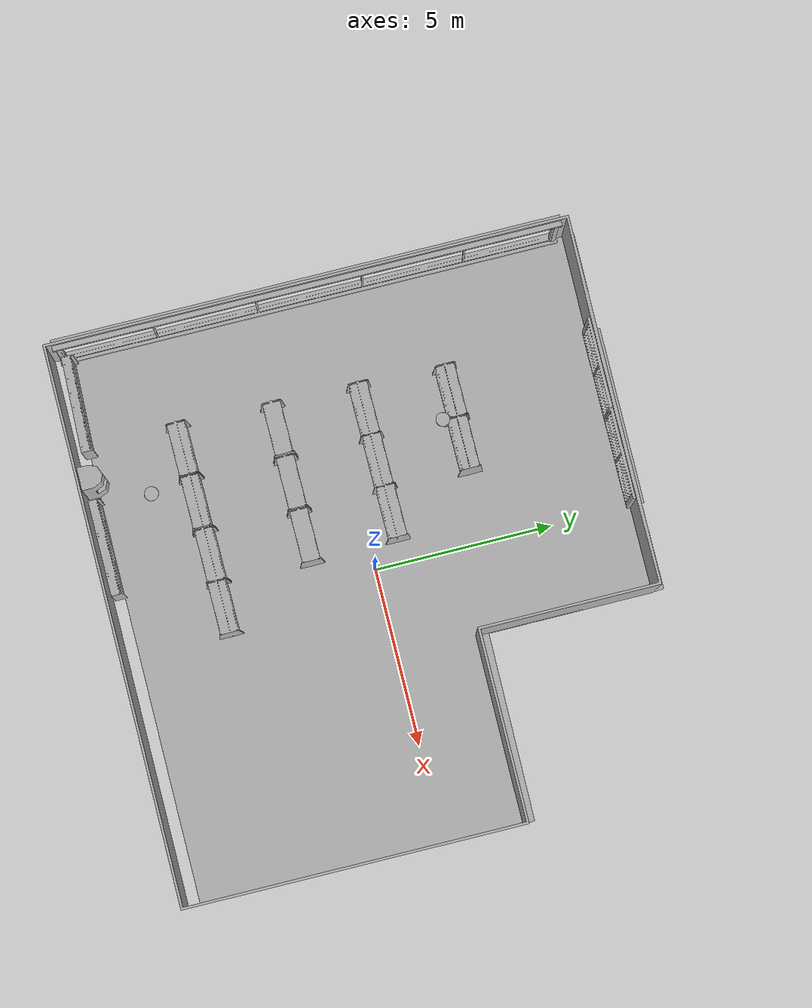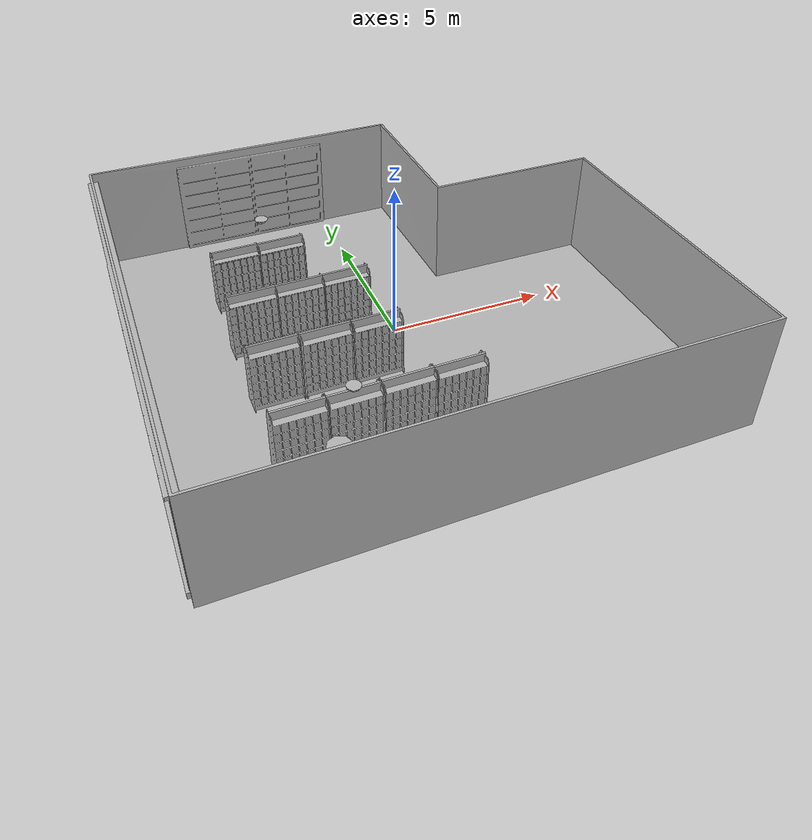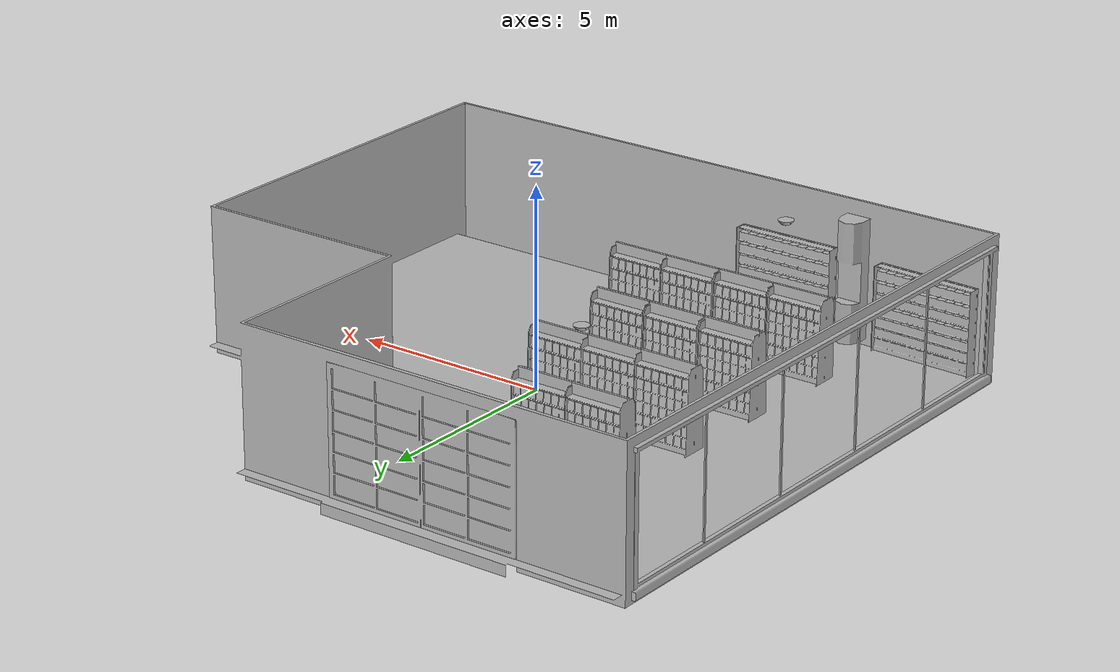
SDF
<sdf version="1.7">
 <world name="default">
  <model name="BookshelfB_01_001">
   <frame name="aws_robomaker_retail_BookshelfB_01::__model__" attached_to="aws_robomaker_retail_BookshelfB_01::link">
    <pose relative_to="__model__">0 0 0 0 -0 0</pose>
   </frame>
   <link name="aws_robomaker_retail_BookshelfB_01::link">
    <inertial>
     <mass>50</mass>
     <inertia><ixx>19.8742</ixx><ixy>0</ixy><ixz>0</ixz><iyy>49.1263</iyy><iyz>0</iyz><izz>30.2231</izz></inertia>
    </inertial>
    <collision name="collision">
     <geometry>
      <mesh>
       <uri>file://models/aws_robomaker_retail_BookshelfB_01/meshes/aws_BookshelfB_01_collision.DAE</uri>
       <scale>1 1 1</scale>
      </mesh>
     </geometry>
    </collision>
    <visual name="visual">
     <geometry>
      <mesh><uri>file://models/aws_robomaker_retail_BookshelfB_01/meshes/aws_BookshelfB_01_visual.DAE</uri></mesh>
     </geometry>
     <meta><layer>1</layer></meta>
    </visual>
    <pose relative_to="aws_robomaker_retail_BookshelfB_01::__model__">0 0 0 0 -0 0</pose>
   </link>
   <static>1</static>
   <pose>-6.18968 -6.78565 -0.008942 0.003533 0.000121 -0.032073</pose>
  </model>
  <model name="BookshelfB_01_002">
   <frame name="aws_robomaker_retail_BookshelfB_01::__model__" attached_to="aws_robomaker_retail_BookshelfB_01::link">
    <pose relative_to="__model__">0 0 0 0 -0 0</pose>
   </frame>
   <link name="aws_robomaker_retail_BookshelfB_01::link">
    <inertial>
     <mass>50</mass>
     <inertia><ixx>19.8742</ixx><ixy>0</ixy><ixz>0</ixz><iyy>49.1263</iyy><iyz>0</iyz><izz>30.2231</izz></inertia>
    </inertial>
    <collision name="collision">
     <geometry>
      <mesh>
       <uri>file://models/aws_robomaker_retail_BookshelfB_01/meshes/aws_BookshelfB_01_collision.DAE</uri>
       <scale>1 1 1</scale>
      </mesh>
     </geometry>
    </collision>
    <visual name="visual">
     <geometry>
      <mesh><uri>file://models/aws_robomaker_retail_BookshelfB_01/meshes/aws_BookshelfB_01_visual.DAE</uri></mesh>
     </geometry>
     <meta><layer>1</layer></meta>
    </visual>
    <pose relative_to="aws_robomaker_retail_BookshelfB_01::__model__">0 0 0 0 -0 0</pose>
   </link>
   <static>1</static>
   <pose>-2.20941 -6.97146 0.017074 -0.000128 -0.000252 0.000364</pose>
  </model>
  <model name="ColumnB_01_002">
   <frame name="aws_robomaker_retail_ColumnB_01::__model__" attached_to="aws_robomaker_retail_ColumnB_01::link">
    <pose relative_to="__model__">0 0 0 0 -0 0</pose>
   </frame>
   <link name="aws_robomaker_retail_ColumnB_01::link">
    <inertial>
     <mass>50</mass>
     <inertia><ixx>44.5597</ixx><ixy>0</ixy><ixz>0</ixz><iyy>44.5597</iyy><iyz>0</iyz><izz>1.87942</izz></inertia>
    </inertial>
    <collision name="collision">
     <geometry>
      <mesh>
       <uri>file://models/aws_robomaker_retail_ColumnB_01/meshes/aws_ColumnB_01_collision.DAE</uri>
       <scale>1 1 1</scale>
      </mesh>
     </geometry>
    </collision>
    <visual name="visual">
     <geometry>
      <mesh><uri>file://models/aws_robomaker_retail_ColumnB_01/meshes/aws_ColumnB_01_visual.DAE</uri></mesh>
     </geometry>
     <meta><layer>1</layer></meta>
    </visual>
    <pose relative_to="aws_robomaker_retail_ColumnB_01::__model__">0 0 0 0 -0 0</pose>
   </link>
   <static>1</static>
   <pose>-4.07623 -6.86071 0.017511 0.001895 -0.000628 -0.003755</pose>
  </model>
  <model name="DoorB_01_001">
   <frame name="aws_robomaker_retail_DoorB_01::__model__" attached_to="aws_robomaker_retail_DoorB_01::link">
    <pose relative_to="__model__">0 0 0 0 -0 0</pose>
   </frame>
   <link name="aws_robomaker_retail_DoorB_01::link">
    <inertial>
     <mass>50</mass>
     <inertia><ixx>44.5597</ixx><ixy>0</ixy><ixz>0</ixz><iyy>151.699</iyy><iyz>0</iyz><izz>107.806</izz></inertia>
    </inertial>
    <collision name="collision">
     <geometry>
      <mesh>
       <uri>file://models/aws_robomaker_retail_DoorB_01/meshes/aws_DoorB_01_collision.DAE</uri>
       <scale>1 1 1</scale>
      </mesh>
     </geometry>
    </collision>
    <visual name="visual">
     <geometry>
      <mesh><uri>file://models/aws_robomaker_retail_DoorB_01/meshes/aws_DoorB_01_visual.DAE</uri></mesh>
     </geometry>
     <meta><layer>2</layer></meta>
    </visual>
    <pose relative_to="aws_robomaker_retail_DoorB_01::__model__">0 0 0 0 -0 0</pose>
   </link>
   <static>1</static>
   <pose>-2.49246 7.21937 -0.035203 0 -0 0</pose>
  </model>
  <model name="RetailShopFloor_01_001">
   <frame name="aws_robomaker_retail_RetailShopFloor_01::__model__" attached_to="aws_robomaker_retail_RetailShopFloor_01::link">
    <pose relative_to="__model__">0 0 0 0 -0 0</pose>
   </frame>
   <link name="aws_robomaker_retail_RetailShopFloor_01::link">
    <inertial><mass>100</mass></inertial>
    <collision name="collision">
     <geometry>
      <mesh>
       <uri>file://models/aws_robomaker_retail_RetailShopFloor_01/meshes/aws_RetailShopFloor_01_collision.DAE</uri>
       <scale>1 1 1</scale>
      </mesh>
     </geometry>
     <surface><friction><ode><mu>100</mu><mu2>50</mu2></ode></friction></surface>
    </collision>
    <visual name="visual">
     <geometry>
      <mesh>
       <uri>file://models/aws_robomaker_retail_RetailShopFloor_01/meshes/aws_RetailShopFloor_01_visual.DAE</uri>
      </mesh>
     </geometry>
     <meta><layer>1</layer></meta>
    </visual>
    <pose relative_to="aws_robomaker_retail_RetailShopFloor_01::__model__">0 0 0 0 -0 0</pose>
   </link>
   <static>1</static>
   <pose>0.025228 0.337252 -0.276618 0 -0 0</pose>
  </model>
  <model name="RetailShopWall_01_001">
   <frame name="aws_robomaker_retail_RetailShopWall_01::__model__" attached_to="aws_robomaker_retail_RetailShopWall_01::link">
    <pose relative_to="__model__">0 0 0 0 -0 0</pose>
   </frame>
   <link name="aws_robomaker_retail_RetailShopWall_01::link">
    <inertial><mass>1</mass></inertial>
    <collision name="collision">
     <geometry>
      <mesh>
       <uri>file://models/aws_robomaker_retail_RetailShopWall_01/meshes/aws_RetailShopWall_01_collision.DAE</uri>
       <scale>1 1 1</scale>
      </mesh>
     </geometry>
    </collision>
    <visual name="visual">
     <geometry>
      <mesh>
       <uri>file://models/aws_robomaker_retail_RetailShopWall_01/meshes/aws_RetailShopWall_01_visual.DAE</uri>
      </mesh>
     </geometry>
     <meta><layer>2</layer></meta>
    </visual>
    <pose relative_to="aws_robomaker_retail_RetailShopWall_01::__model__">0 0 0 0 -0 0</pose>
   </link>
   <static>1</static>
   <pose>0 0 -0.281282 0 -0 0</pose>
  </model>
  <model name="LightA_01_004">
   <frame name="aws_robomaker_retail_LightA_01::__model__" attached_to="aws_robomaker_retail_LightA_01::link">
    <pose relative_to="__model__">0 0 0 0 -0 0</pose>
   </frame>
   <link name="aws_robomaker_retail_LightA_01::link">
    <inertial><mass>1</mass></inertial>
    <collision name="collision">
     <geometry>
      <mesh>
       <uri>file://models/aws_robomaker_retail_LightA_01/meshes/aws_LightA_01_collision.DAE</uri>
       <scale>1 1 1</scale>
      </mesh>
     </geometry>
    </collision>
    <visual name="visual">
     <geometry>
      <mesh><uri>file://models/aws_robomaker_retail_LightA_01/meshes/aws_LightA_01_visual.DAE</uri></mesh>
     </geometry>
     <meta><layer>3</layer></meta>
    </visual>
    <pose relative_to="aws_robomaker_retail_LightA_01::__model__">0 0 0 0 -0 0</pose>
   </link>
   <static>1</static>
   <pose>-3.21067 -5.38371 3.15033 0 -0 0</pose>
  </model>
  <model name="LightA_01_005">
   <frame name="aws_robomaker_retail_LightA_01::__model__" attached_to="aws_robomaker_retail_LightA_01::link">
    <pose relative_to="__model__">0 0 0 0 -0 0</pose>
   </frame>
   <link name="aws_robomaker_retail_LightA_01::link">
    <inertial><mass>1</mass></inertial>
    <collision name="collision">
     <geometry>
      <mesh>
       <uri>file://models/aws_robomaker_retail_LightA_01/meshes/aws_LightA_01_collision.DAE</uri>
       <scale>1 1 1</scale>
      </mesh>
     </geometry>
    </collision>
    <visual name="visual">
     <geometry>
      <mesh><uri>file://models/aws_robomaker_retail_LightA_01/meshes/aws_LightA_01_visual.DAE</uri></mesh>
     </geometry>
     <meta><layer>3</layer></meta>
    </visual>
    <pose relative_to="aws_robomaker_retail_LightA_01::__model__">0 0 0 0 -0 0</pose>
   </link>
   <static>1</static>
   <pose>-3.271 2.68593 3.15033 0 -0 0</pose>
  </model>
  <model name="ShopWindow_01_001">
   <frame name="aws_robomaker_retail_ShopWindow_01::__model__" attached_to="aws_robomaker_retail_ShopWindow_01::link">
    <pose relative_to="__model__">0 0 0 0 -0 0</pose>
   </frame>
   <link name="aws_robomaker_retail_ShopWindow_01::link">
    <inertial><mass>1</mass></inertial>
    <collision name="collision">
     <geometry>
      <mesh>
       <uri>file://models/aws_robomaker_retail_ShopWindow_01/meshes/aws_ShopWindow_01_collision.DAE</uri>
       <scale>1 1 1</scale>
      </mesh>
     </geometry>
    </collision>
    <visual name="visual">
     <geometry>
      <mesh><uri>file://models/aws_robomaker_retail_ShopWindow_01/meshes/aws_ShopWindow_01_visual.DAE</uri></mesh>
     </geometry>
    </visual>
    <pose relative_to="aws_robomaker_retail_ShopWindow_01::__model__">0 0 0 0 -0 0</pose>
   </link>
   <static>1</static>
   <pose>-7.73816 0.01596 -0.180092 0 -0 0</pose>
  </model>
  <model name="BookshelfA_01_003_clone_clone_1">
   <frame name="aws_robomaker_retail_BookshelfA_01::__model__" attached_to="aws_robomaker_retail_BookshelfA_01::link">
    <pose relative_to="__model__">0 0 0 0 -0 0</pose>
   </frame>
   <link name="aws_robomaker_retail_BookshelfA_01::link">
    <inertial>
     <mass>50</mass>
     <inertia><ixx>27.7341</ixx><ixy>0</ixy><ixz>0</ixz><iyy>20.9361</iyy><iyz>0</iyz><izz>11.3596</izz></inertia>
    </inertial>
    <collision name="collision">
     <geometry>
      <mesh>
       <uri>file://models/aws_robomaker_retail_BookshelfA_01/meshes/aws_BookshelfA_01_collision.DAE</uri>
       <scale>1 1 1</scale>
      </mesh>
     </geometry>
    </collision>
    <visual name="visual">
     <geometry>
      <mesh><uri>file://models/aws_robomaker_retail_BookshelfA_01/meshes/aws_BookshelfA_01_visual.DAE</uri></mesh>
     </geometry>
     <meta><layer>1</layer></meta>
    </visual>
    <pose relative_to="aws_robomaker_retail_BookshelfA_01::__model__">0 0 0 0 -0 0</pose>
   </link>
   <static>1</static>
   <pose>0.115584 -4.2804 0.052325 0.001956 0.001359 -1.56243</pose>
  </model>
  <model name="BookshelfA_01_003_clone_clone_2">
   <frame name="aws_robomaker_retail_BookshelfA_01::__model__" attached_to="aws_robomaker_retail_BookshelfA_01::link">
    <pose relative_to="__model__">0 0 0 0 -0 0</pose>
   </frame>
   <link name="aws_robomaker_retail_BookshelfA_01::link">
    <inertial>
     <mass>50</mass>
     <inertia><ixx>27.7341</ixx><ixy>0</ixy><ixz>0</ixz><iyy>20.9361</iyy><iyz>0</iyz><izz>11.3596</izz></inertia>
    </inertial>
    <collision name="collision">
     <geometry>
      <mesh>
       <uri>file://models/aws_robomaker_retail_BookshelfA_01/meshes/aws_BookshelfA_01_collision.DAE</uri>
       <scale>1 1 1</scale>
      </mesh>
     </geometry>
    </collision>
    <visual name="visual">
     <geometry>
      <mesh><uri>file://models/aws_robomaker_retail_BookshelfA_01/meshes/aws_BookshelfA_01_visual.DAE</uri></mesh>
     </geometry>
     <meta><layer>1</layer></meta>
    </visual>
    <pose relative_to="aws_robomaker_retail_BookshelfA_01::__model__">0 0 0 0 -0 0</pose>
   </link>
   <static>1</static>
   <pose>-1.35838 -4.28487 0.052387 0.001956 0.001359 -1.56243</pose>
  </model>
  <model name="BookshelfA_01_003_clone_clone_2_clone">
   <frame name="aws_robomaker_retail_BookshelfA_01::__model__" attached_to="aws_robomaker_retail_BookshelfA_01::link">
    <pose relative_to="__model__">0 0 0 0 -0 0</pose>
   </frame>
   <link name="aws_robomaker_retail_BookshelfA_01::link">
    <inertial>
     <mass>50</mass>
     <inertia><ixx>27.7341</ixx><ixy>0</ixy><ixz>0</ixz><iyy>20.9361</iyy><iyz>0</iyz><izz>11.3596</izz></inertia>
    </inertial>
    <collision name="collision">
     <geometry>
      <mesh>
       <uri>file://models/aws_robomaker_retail_BookshelfA_01/meshes/aws_BookshelfA_01_collision.DAE</uri>
       <scale>1 1 1</scale>
      </mesh>
     </geometry>
    </collision>
    <visual name="visual">
     <geometry>
      <mesh><uri>file://models/aws_robomaker_retail_BookshelfA_01/meshes/aws_BookshelfA_01_visual.DAE</uri></mesh>
     </geometry>
     <meta><layer>1</layer></meta>
    </visual>
    <pose relative_to="aws_robomaker_retail_BookshelfA_01::__model__">0 0 0 0 -0 0</pose>
   </link>
   <static>1</static>
   <pose>-2.85523 -4.31025 0.052353 0.001956 0.001359 -1.56243</pose>
  </model>
  <model name="BookshelfA_01_003_clone_clone_3_clone_clone_3">
   <frame name="aws_robomaker_retail_BookshelfA_01::__model__" attached_to="aws_robomaker_retail_BookshelfA_01::link">
    <pose relative_to="__model__">0 0 0 0 -0 0</pose>
   </frame>
   <link name="aws_robomaker_retail_BookshelfA_01::link">
    <inertial>
     <mass>50</mass>
     <inertia><ixx>27.7341</ixx><ixy>0</ixy><ixz>0</ixz><iyy>20.9361</iyy><iyz>0</iyz><izz>11.3596</izz></inertia>
    </inertial>
    <collision name="collision">
     <geometry>
      <mesh>
       <uri>file://models/aws_robomaker_retail_BookshelfA_01/meshes/aws_BookshelfA_01_collision.DAE</uri>
       <scale>1 1 1</scale>
      </mesh>
     </geometry>
    </collision>
    <visual name="visual">
     <geometry>
      <mesh><uri>file://models/aws_robomaker_retail_BookshelfA_01/meshes/aws_BookshelfA_01_visual.DAE</uri></mesh>
     </geometry>
     <meta><layer>1</layer></meta>
    </visual>
    <pose relative_to="aws_robomaker_retail_BookshelfA_01::__model__">0 0 0 0 -0 0</pose>
   </link>
   <static>1</static>
   <pose>-1.24433 -1.6575 0.053298 0.001956 0.001359 -1.56243</pose>
  </model>
  <model name="BookshelfA_01_003_clone_clone_3_clone_clone_4">
   <frame name="aws_robomaker_retail_BookshelfA_01::__model__" attached_to="aws_robomaker_retail_BookshelfA_01::link">
    <pose relative_to="__model__">0 0 0 0 -0 0</pose>
   </frame>
   <link name="aws_robomaker_retail_BookshelfA_01::link">
    <inertial>
     <mass>50</mass>
     <inertia><ixx>27.7341</ixx><ixy>0</ixy><ixz>0</ixz><iyy>20.9361</iyy><iyz>0</iyz><izz>11.3596</izz></inertia>
    </inertial>
    <collision name="collision">
     <geometry>
      <mesh>
       <uri>file://models/aws_robomaker_retail_BookshelfA_01/meshes/aws_BookshelfA_01_collision.DAE</uri>
       <scale>1 1 1</scale>
      </mesh>
     </geometry>
    </collision>
    <visual name="visual">
     <geometry>
      <mesh><uri>file://models/aws_robomaker_retail_BookshelfA_01/meshes/aws_BookshelfA_01_visual.DAE</uri></mesh>
     </geometry>
     <meta><layer>1</layer></meta>
    </visual>
    <pose relative_to="aws_robomaker_retail_BookshelfA_01::__model__">0 0 0 0 -0 0</pose>
   </link>
   <static>1</static>
   <pose>-2.7405 -1.66671 0.053358 0.001956 0.001359 -1.56243</pose>
  </model>
  <model name="BookshelfA_01_003_clone_clone_3_clone_clone_7">
   <frame name="aws_robomaker_retail_BookshelfA_01::__model__" attached_to="aws_robomaker_retail_BookshelfA_01::link">
    <pose relative_to="__model__">0 0 0 0 -0 0</pose>
   </frame>
   <link name="aws_robomaker_retail_BookshelfA_01::link">
    <inertial>
     <mass>50</mass>
     <inertia><ixx>27.7341</ixx><ixy>0</ixy><ixz>0</ixz><iyy>20.9361</iyy><iyz>0</iyz><izz>11.3596</izz></inertia>
    </inertial>
    <collision name="collision">
     <geometry>
      <mesh>
       <uri>file://models/aws_robomaker_retail_BookshelfA_01/meshes/aws_BookshelfA_01_collision.DAE</uri>
       <scale>1 1 1</scale>
      </mesh>
     </geometry>
    </collision>
    <visual name="visual">
     <geometry>
      <mesh><uri>file://models/aws_robomaker_retail_BookshelfA_01/meshes/aws_BookshelfA_01_visual.DAE</uri></mesh>
     </geometry>
     <meta><layer>1</layer></meta>
    </visual>
    <pose relative_to="aws_robomaker_retail_BookshelfA_01::__model__">0 0 0 0 -0 0</pose>
   </link>
   <static>1</static>
   <pose>-1.31551 0.788494 0.048175 0.001956 0.001359 -1.56243</pose>
  </model>
  <model name="BookshelfA_01_003_clone_clone_3_clone_clone_8">
   <frame name="aws_robomaker_retail_BookshelfA_01::__model__" attached_to="aws_robomaker_retail_BookshelfA_01::link">
    <pose relative_to="__model__">0 0 0 0 -0 0</pose>
   </frame>
   <link name="aws_robomaker_retail_BookshelfA_01::link">
    <inertial>
     <mass>50</mass>
     <inertia><ixx>27.7341</ixx><ixy>0</ixy><ixz>0</ixz><iyy>20.9361</iyy><iyz>0</iyz><izz>11.3596</izz></inertia>
    </inertial>
    <collision name="collision">
     <geometry>
      <mesh>
       <uri>file://models/aws_robomaker_retail_BookshelfA_01/meshes/aws_BookshelfA_01_collision.DAE</uri>
       <scale>1 1 1</scale>
      </mesh>
     </geometry>
    </collision>
    <visual name="visual">
     <geometry>
      <mesh><uri>file://models/aws_robomaker_retail_BookshelfA_01/meshes/aws_BookshelfA_01_visual.DAE</uri></mesh>
     </geometry>
     <meta><layer>1</layer></meta>
    </visual>
    <pose relative_to="aws_robomaker_retail_BookshelfA_01::__model__">0 0 0 0 -0 0</pose>
   </link>
   <static>1</static>
   <pose>-2.75721 0.762321 0.048342 0.001956 0.001359 -1.56243</pose>
  </model>
  <model name="BookshelfA_01_003_clone_clone_3_clone_clone_9">
   <frame name="aws_robomaker_retail_BookshelfA_01::__model__" attached_to="aws_robomaker_retail_BookshelfA_01::link">
    <pose relative_to="__model__">0 0 0 0 -0 0</pose>
   </frame>
   <link name="aws_robomaker_retail_BookshelfA_01::link">
    <inertial>
     <mass>50</mass>
     <inertia><ixx>27.7341</ixx><ixy>0</ixy><ixz>0</ixz><iyy>20.9361</iyy><iyz>0</iyz><izz>11.3596</izz></inertia>
    </inertial>
    <collision name="collision">
     <geometry>
      <mesh>
       <uri>file://models/aws_robomaker_retail_BookshelfA_01/meshes/aws_BookshelfA_01_collision.DAE</uri>
       <scale>1 1 1</scale>
      </mesh>
     </geometry>
    </collision>
    <visual name="visual">
     <geometry>
      <mesh><uri>file://models/aws_robomaker_retail_BookshelfA_01/meshes/aws_BookshelfA_01_visual.DAE</uri></mesh>
     </geometry>
     <meta><layer>1</layer></meta>
    </visual>
    <pose relative_to="aws_robomaker_retail_BookshelfA_01::__model__">0 0 0 0 -0 0</pose>
   </link>
   <static>1</static>
   <pose>-4.21231 0.747101 0.050975 0.001956 0.001359 -1.56243</pose>
  </model>
  <model name="BookshelfA_01_003_clone_clone_3_clone_clone_4_clone">
   <frame name="aws_robomaker_retail_BookshelfA_01::__model__" attached_to="aws_robomaker_retail_BookshelfA_01::link">
    <pose relative_to="__model__">0 0 0 0 -0 0</pose>
   </frame>
   <link name="aws_robomaker_retail_BookshelfA_01::link">
    <inertial>
     <mass>50</mass>
     <inertia><ixx>27.7341</ixx><ixy>0</ixy><ixz>0</ixz><iyy>20.9361</iyy><iyz>0</iyz><izz>11.3596</izz></inertia>
    </inertial>
    <collision name="collision">
     <geometry>
      <mesh>
       <uri>file://models/aws_robomaker_retail_BookshelfA_01/meshes/aws_BookshelfA_01_collision.DAE</uri>
       <scale>1 1 1</scale>
      </mesh>
     </geometry>
    </collision>
    <visual name="visual">
     <geometry>
      <mesh><uri>file://models/aws_robomaker_retail_BookshelfA_01/meshes/aws_BookshelfA_01_visual.DAE</uri></mesh>
     </geometry>
     <meta><layer>1</layer></meta>
    </visual>
    <pose relative_to="aws_robomaker_retail_BookshelfA_01::__model__">0 0 0 0 -0 0</pose>
   </link>
   <static>1</static>
   <pose>-4.25297 -1.67375 0.053358 0.001956 0.001359 -1.56243</pose>
  </model>
  <model name="BookshelfA_01_003_clone_clone_3_clone_clone_4_clone_0">
   <frame name="aws_robomaker_retail_BookshelfA_01::__model__" attached_to="aws_robomaker_retail_BookshelfA_01::link">
    <pose relative_to="__model__">0 0 0 0 -0 0</pose>
   </frame>
   <link name="aws_robomaker_retail_BookshelfA_01::link">
    <inertial>
     <mass>50</mass>
     <inertia><ixx>27.7341</ixx><ixy>0</ixy><ixz>0</ixz><iyy>20.9361</iyy><iyz>0</iyz><izz>11.3596</izz></inertia>
    </inertial>
    <collision name="collision">
     <geometry>
      <mesh>
       <uri>file://models/aws_robomaker_retail_BookshelfA_01/meshes/aws_BookshelfA_01_collision.DAE</uri>
       <scale>1 1 1</scale>
      </mesh>
     </geometry>
    </collision>
    <visual name="visual">
     <geometry>
      <mesh><uri>file://models/aws_robomaker_retail_BookshelfA_01/meshes/aws_BookshelfA_01_visual.DAE</uri></mesh>
     </geometry>
     <meta><layer>1</layer></meta>
    </visual>
    <pose relative_to="aws_robomaker_retail_BookshelfA_01::__model__">0 0 0 0 -0 0</pose>
   </link>
   <static>1</static>
   <pose>-4.33992 -4.32838 0.053358 0.001956 0.001359 -1.56243</pose>
  </model>
  <model name="BookshelfA_01_003_clone_clone_3_clone_clone_4_clone_1">
   <frame name="aws_robomaker_retail_BookshelfA_01::__model__" attached_to="aws_robomaker_retail_BookshelfA_01::link">
    <pose relative_to="__model__">0 0 0 0 -0 0</pose>
   </frame>
   <link name="aws_robomaker_retail_BookshelfA_01::link">
    <inertial>
     <mass>50</mass>
     <inertia><ixx>27.7341</ixx><ixy>0</ixy><ixz>0</ixz><iyy>20.9361</iyy><iyz>0</iyz><izz>11.3596</izz></inertia>
    </inertial>
    <collision name="collision">
     <geometry>
      <mesh>
       <uri>file://models/aws_robomaker_retail_BookshelfA_01/meshes/aws_BookshelfA_01_collision.DAE</uri>
       <scale>1 1 1</scale>
      </mesh>
     </geometry>
    </collision>
    <visual name="visual">
     <geometry>
      <mesh><uri>file://models/aws_robomaker_retail_BookshelfA_01/meshes/aws_BookshelfA_01_visual.DAE</uri></mesh>
     </geometry>
     <meta><layer>1</layer></meta>
    </visual>
    <pose relative_to="aws_robomaker_retail_BookshelfA_01::__model__">0 0 0 0 -0 0</pose>
   </link>
   <static>1</static>
   <pose>-2.64977 3.1562 0.053358 0.001956 0.001359 -1.56243</pose>
  </model>
  <model name="BookshelfA_01_003_clone_clone_3_clone_clone_4_clone_2">
   <frame name="aws_robomaker_retail_BookshelfA_01::__model__" attached_to="aws_robomaker_retail_BookshelfA_01::link">
    <pose relative_to="__model__">0 0 0 0 -0 0</pose>
   </frame>
   <link name="aws_robomaker_retail_BookshelfA_01::link">
    <inertial>
     <mass>50</mass>
     <inertia><ixx>27.7341</ixx><ixy>0</ixy><ixz>0</ixz><iyy>20.9361</iyy><iyz>0</iyz><izz>11.3596</izz></inertia>
    </inertial>
    <collision name="collision">
     <geometry>
      <mesh>
       <uri>file://models/aws_robomaker_retail_BookshelfA_01/meshes/aws_BookshelfA_01_collision.DAE</uri>
       <scale>1 1 1</scale>
      </mesh>
     </geometry>
    </collision>
    <visual name="visual">
     <geometry>
      <mesh><uri>file://models/aws_robomaker_retail_BookshelfA_01/meshes/aws_BookshelfA_01_visual.DAE</uri></mesh>
     </geometry>
     <meta><layer>1</layer></meta>
    </visual>
    <pose relative_to="aws_robomaker_retail_BookshelfA_01::__model__">0 0 0 0 -0 0</pose>
   </link>
   <static>1</static>
   <pose>-4.11902 3.16758 0.053358 0.001956 0.001359 -1.56243</pose>
  </model>
 </world>
</sdf>
